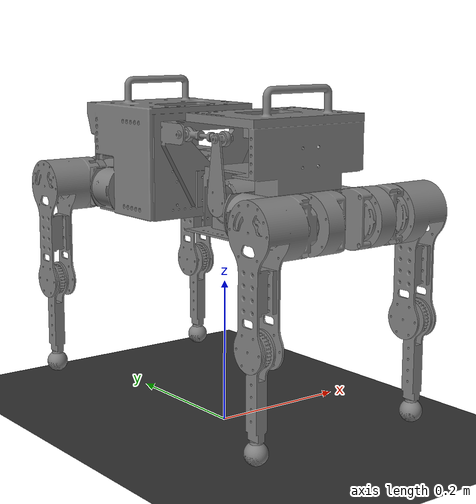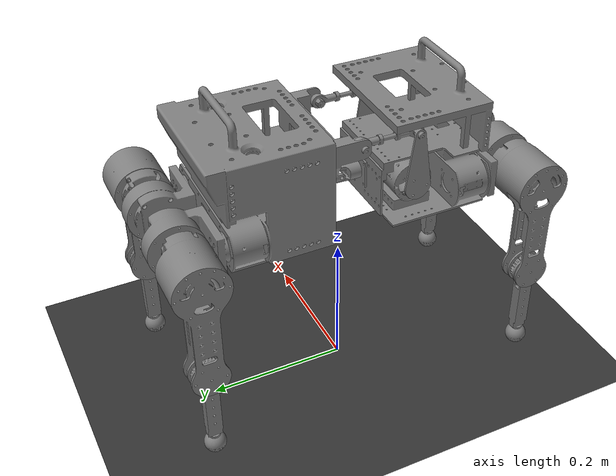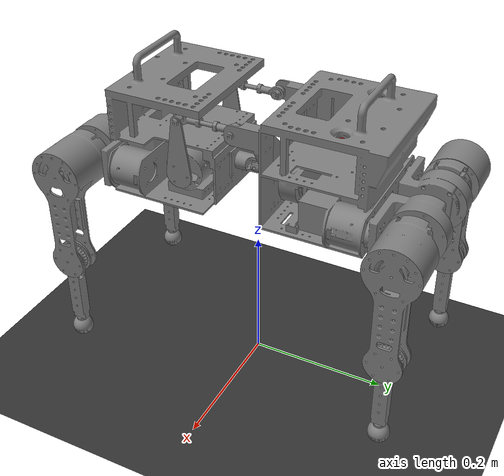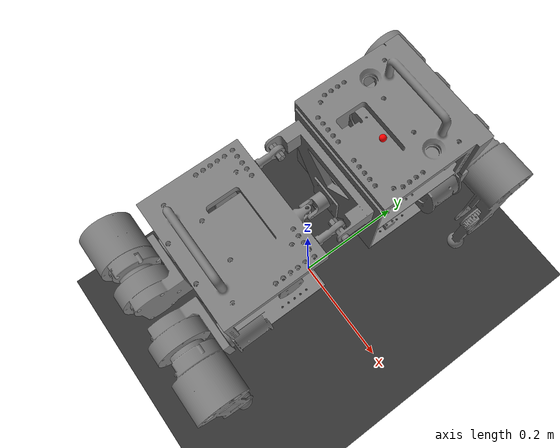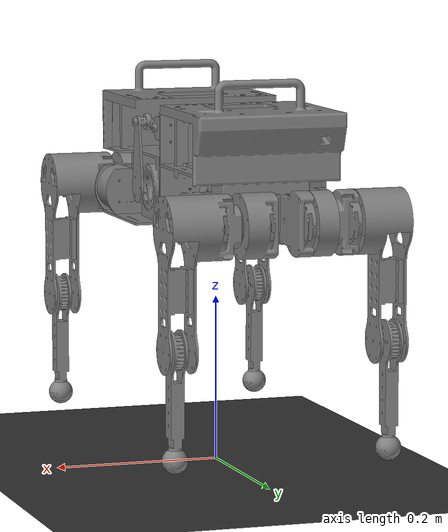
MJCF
<mujoco model="quadruped">
    <compiler angle="radian" eulerseq="XYZ" />
    <option gravity="0 0 0" timestep="0.001"/>
    <asset>
        <mesh name="SPINE_BASE" file="meshes/SPINE_BASE.stl" scale="0.001 0.001 0.001" />
        <mesh name="FR_tibia" file="meshes/FR_tibia.stl" scale="0.001 0.001 0.001" />
        <mesh name="FR_femur" file="meshes/FR_femur.stl" scale="0.001 0.001 0.001" />
        <mesh name="FR_hip" file="meshes/FR_hip.stl" scale="0.001 0.001 0.001" />
        <mesh name="FL_tibia" file="meshes/FL_tibia.stl" scale="0.001 0.001 0.001" />
        <mesh name="FL_femur" file="meshes/FL_femur.stl" scale="0.001 0.001 0.001" />
        <mesh name="FL_hip" file="meshes/FL_hip.stl" scale="0.001 0.001 0.001" />
        <mesh name="RR_tibia" file="meshes/RR_tibia.stl" scale="0.001 0.001 0.001" />
        <mesh name="RR_femur" file="meshes/RR_femur.stl" scale="0.001 0.001 0.001" />
        <mesh name="RR_hip" file="meshes/RR_hip.stl" scale="0.001 0.001 0.001" />
        <mesh name="RL_tibia" file="meshes/RL_tibia.stl" scale="0.001 0.001 0.001" />
        <mesh name="RL_femur" file="meshes/RL_femur.stl" scale="0.001 0.001 0.001" />
        <mesh name="RL_hip" file="meshes/RL_hip.stl" scale="0.001 0.001 0.001" />
        <mesh name="frontbase" file="meshes/frontbase.stl" scale="0.001 0.001 0.001" />
        <mesh name="backbase" file="meshes/backbase.stl" scale="0.001 0.001 0.001" />
        <mesh name="spine_RR_link" file="meshes/spine_RR_link.stl" scale="0.001 0.001 0.001" />
        <mesh name="spine_R_bar" file="meshes/spine_R_bar.stl" scale="0.001 0.001 0.001" />
        <mesh name="spine_RL_link" file="meshes/spine_RL_link.stl" scale="0.001 0.001 0.001" />
        <mesh name="spine_L_bar" file="meshes/spine_L_bar.stl" scale="0.001 0.001 0.001" />
        <mesh name="spine_FR_link" file="meshes/spine_FR_link.stl" scale="0.001 0.001 0.001" />
        <mesh name="spine_FL_link" file="meshes/spine_FL_link.stl" scale="0.001 0.001 0.001" />
    </asset>
      <worldbody>
        <light directional="true" pos="-0.5 0.5 3" dir="0 0 -1" />
        <body name="ground" pos="0 0 0">
            <geom type="plane" size="1 5 0.1" rgba="0.2 0.2 0.2 1" contype="1" conaffinity="1"/>
        </body>
        <body name="frontbase" pos="0.0 0.0 0.05" euler="0.0 0.0 0.0">
        <site name="imu_site" pos="0 0.12 0.35" size="0.005" rgba="1 0 0 1" />
            <joint name="root" type="free" />
            <geom name="frontbase_geom" type="mesh" mesh="frontbase" pos="0 0 0" euler="0 0 0" />
            <inertial mass="2.7047567302273086" pos="0.00033440222387868623 0.1245660632194667 0.2884083159461461" fullinertia="0.01078220929242324 0.013457553343312278 0.013262848443079664 1.1086881562630236e-05 2.426939650604682e-05 -0.0005029335341283497" />
            <body name="SPINE_BASE" pos="0.0 0.0 0.0" euler="0.0 -0.0 0.0">
                <joint name="F_j_spine" type="hinge" axis="0.0 -1.0 0.0" pos="0.0 0.048 0.2765" damping="0.0"/>
                <geom name="SPINE_BASE_geom" type="mesh" mesh="SPINE_BASE" pos="0 0 0" euler="0 0 0" />
                <inertial mass="0.31335795014290313" pos="3.392857252372269e-05 0.02698902626004699 0.30937648052390193" fullinertia="0.0004972224121499481 0.00096065696826848 0.0005518668776431874 -1.7053173613796147e-07 5.967022642829059e-08 1.8881962424268858e-05" />
                <body name="backbase" pos="0.0 0.0 0.0" euler="0.0 -0.0 0.0">
                    <joint name="j_universal" type="ball" pos="0.0 0.0 0.2765" damping="0.0"/>
                    <geom name="backbase_geom" type="mesh" mesh="backbase" pos="0 0 0" euler="0 0 0" />
                    <inertial mass="2.3349797051174357" pos="0.00013038137961569882 -0.10877171233725845 0.289194925915773" fullinertia="0.009087224494453011 0.011894123164930326 0.012186912807923042 2.1845326624663316e-06 4.249097312183789e-06 -6.126653941354587e-06" />
                    <body name="spine_L_bar" pos="0.0 0.0 0.0" euler="0.0 -0.0 0.0">
                        <joint name="RL_j_spine" type="hinge" axis="-1.0 0.0 0.0" pos="-0.061 -0.0805 0.2765" damping="0.0"/>
                        <geom name="spine_L_bar_geom" type="mesh" mesh="spine_L_bar" pos="0 0 0" euler="0 0 0" />
                        <inertial mass="0.03164580194616816" pos="-0.06755810312118324 -0.08039586581758262 0.33670530069433136" fullinertia="3.095324773523707e-05 3.1815550520951016e-05 2.89296070835705e-06 -2.062111216410479e-08 -3.7219913899651713e-06 -6.522642423108325e-08" />
                        <body name="spine_RL_link" pos="0.0 0.0 0.0" euler="0.0 -0.0 0.0">
                            <joint name="RL_j_link" type="ball" pos="-0.0615 -0.0805 0.3565" damping="0.0"/>
                            <geom name="spine_RL_link_geom" type="mesh" mesh="spine_RL_link" pos="0 0 0" euler="0 0 0" />
                            <inertial mass="0.02899974002495084" pos="-0.06149999999987106 -0.06295174717543707 0.35649999999854837" fullinertia="8.563419834303233e-06 6.156065880365616e-07 8.243247599980783e-06 1.1424780392566003e-17 6.353424730765056e-17 -9.497611030973019e-17" />
                        </body>
                    </body>
                    <body name="spine_R_bar" pos="0.0 0.0 0.0" euler="0.0 -0.0 0.0">
                        <joint name="RR_j_spine" type="hinge" axis="1.0 0.0 0.0" pos="0.061 -0.0805 0.2765" damping="0.0"/>
                        <geom name="spine_R_bar_geom" type="mesh" mesh="spine_R_bar" pos="0 0 0" euler="0 0 0" />
                        <inertial mass="0.031645801946168124" pos="0.06759945826011354 -0.08050000000314 0.3367056283650498" fullinertia="3.095234208204314e-05 3.181968096638418e-05 2.8953645025755212e-06 -1.279900664619138e-16 3.6961510613363726e-06 1.543253372315867e-15" />
                        <body name="spine_RR_link" pos="0.0 0.0 0.0" euler="0.0 -0.0 0.0">
                            <joint name="RR_j_link" type="ball" pos="0.0615 -0.0805 0.3565" damping="0.0"/>
                            <geom name="spine_RR_link_geom" type="mesh" mesh="spine_RR_link" pos="0 0 0" euler="0 0 0" />
                            <inertial mass="0.028999740024949126" pos="0.061499999999797876 -0.06295174717325776 0.3565000000126479" fullinertia="8.563419834318412e-06 6.156065880513067e-07 8.243247599981678e-06 3.5778671692021646e-17 6.10405823109339e-17 1.7141236346995825e-16" />
                        </body>
                    </body>
                    <body name="RR_hip" pos="0.0 0.0 0.0" euler="0.0 -0.0 0.0">
                        <joint name="RR_j_hip" type="hinge" axis="0.0 -1.0 0.0" pos="0.07 -0.176 0.266" damping="0.0" />
                        <geom name="RR_hip_geom" type="mesh" mesh="RR_hip" pos="0 0 0" euler="0 0 0" />
                        <inertial mass="0.42765614096569765" pos="0.04127800942400755 -0.2273092587519674 0.26606812124931534" fullinertia="0.0003819813177835876 0.00022425957082698733 0.0003062069227042566 -2.5639633945336374e-05 5.604986032681919e-07 2.0864847461235514e-07" />
                        <body name="RR_femur" pos="0.0 0.0 0.0" euler="0.0 -0.0 0.0">
                            <joint name="RR_j_femur" type="hinge" axis="1.0 0.0 0.0" pos="0.056 -0.234 0.266" damping="0.0"/>
                            <geom name="RR_femur_geom" type="mesh" mesh="RR_femur" pos="0 0 0" euler="0 0 0" />
                            <inertial mass="0.5478239660925199" pos="0.10262713634913981 -0.23333676163791178 0.2564743290521438" fullinertia="0.0009210868412945078 0.0009515235171001224 0.0003898366261748873 1.0369006426390326e-05 0.00012862808425460025 -3.44730242726049e-06" />
                            <body name="RR_tibia" pos="0.0 0.0 0.0" euler="0.0 -0.0 0.0">
                                <joint name="RR_j_tibia" type="hinge" axis="1.0 0.0 0.0" pos="0.113 -0.234 0.126" damping="0.0"/>
                                <geom name="RR_tibia_geom" type="mesh" mesh="RR_tibia" pos="0 0 0" euler="0 0 0" />
                                <inertial mass="0.06643041309117047" pos="0.1300000003100186 -0.23399974067058146 0.07451621272270392" fullinertia="0.0001728263651286045 0.00016950454321351953 7.324185496569019e-06 1.44164288016016e-09 8.782037597132586e-17 1.432228884318612e-09" />
                            </body>
                        </body>
                    </body>
                    <body name="RL_hip" pos="0.0 0.0 0.0" euler="0.0 -0.0 0.0">
                        <joint name="RL_j_hip" type="hinge" axis="0.0 -1.0 0.0" pos="-0.07 -0.176 0.266" damping="0.0" />
                        <geom name="RL_hip_geom" type="mesh" mesh="RL_hip" pos="0 0 0" euler="0 0 0" />
                        <inertial mass="0.42765614096569793" pos="-0.041278008804007546 -0.22730925875196725 0.26593187827114756" fullinertia="0.00038198131778947875 0.0002242595708328715 0.00030620692270427394 2.563963394533117e-05 5.60496829816147e-07 -2.0865824064408844e-07" />
                        <body name="RL_femur" pos="0.0 0.0 0.0" euler="0.0 -0.0 0.0">
                            <joint name="RL_j_femur" type="hinge" axis="-1.0 -0.0 -0.0" pos="-0.056 -0.234 0.266" damping="0.0"/>
                            <geom name="RL_femur_geom" type="mesh" mesh="RL_femur" pos="0 0 0" euler="0 0 0" />
                            <inertial mass="0.5478239660925199" pos="-0.10262713572913987 -0.23333676163791509 0.25636797041582277" fullinertia="0.0009199706233370408 0.0009504072991454657 0.00038983662617207704 -1.0369006426445837e-05 -0.00012716627840188635 -3.5134260216729274e-06" />
                            <body name="RL_tibia" pos="0.0 0.0 0.0" euler="0.0 -0.0 0.0">
                                <joint name="RL_j_tibia" type="hinge" axis="-1.0 0.0 0.0" pos="-0.113 -0.234 0.126" damping="0.0"/>
                                <geom name="RL_tibia_geom" type="mesh" mesh="RL_tibia" pos="0 0 0" euler="0 0 0" />
                                <inertial mass="0.06643041309117051" pos="-0.1299999996900186 -0.23400025932378982 0.07451621072657212" fullinertia="0.0001728263651286444 0.0001695045432135191 7.32418549660805e-06 1.4416428792927982e-09 -8.738669510233166e-17 -1.4322288387821208e-09" />
                            </body>
                        </body>
                    </body>
                </body>
                <body name="spine_FR_link" pos="0.0 0.0 0.0" euler="0.0 -0.0 0.0">
                    <joint name="FR_j_link" type="ball" pos="0.0615 -0.0005 0.3565" damping="0.0"/>
                    <joint name="FR_j_link_slide" type="slide" axis="0 1 0" pos="0.0615 -0.0045 0.3565" damping="1e3" stiffness="1e7" springref="0"/>
                    <geom name="spine_FR_link_geom" type="mesh" mesh="spine_FR_link" pos="0 0 0" euler="0 0 0" />
                    <inertial mass="0.022341134395664226" pos="0.06150000000021454 -0.011356679906857457 0.3565000000116856" fullinertia="3.6921940064428733e-06 5.856428636689774e-07 3.372021770187196e-06 3.628011519679619e-17 3.74049749507499e-17 3.7052609244692114e-17" />
                </body>
                <body name="spine_FL_link" pos="0.0 0.0 0.0" euler="0.0 -0.0 0.0">
                    <joint name="FL_j_link" type="ball" pos="-0.0615 -0.0005 0.3565" damping="0.0"/>
                    <joint name="FL_j_link_slide" type="slide" axis="0 1 0" pos="-0.0615 -0.0045 0.3565" damping="1e3" stiffness="1e7" springref="0"/>
                    <geom name="spine_FL_link_geom" type="mesh" mesh="spine_FL_link" pos="0 0 0" euler="0 0 0" />
                    <inertial mass="0.02234113439566692" pos="-0.061500000000215736 -0.011356679909035676 0.35649999999899146" fullinertia="3.6921940064372355e-06 5.856428636624722e-07 3.3720217701870605e-06 -3.625978640606209e-17 3.8055496254241206e-17 -9.053088140253962e-18" />
                </body>
            </body>
            <body name="FL_hip" pos="0.0 0.0 0.0" euler="0.0 -0.0 0.0">
                <joint name="FL_j_hip" type="hinge" axis="0.0 1.0 0.0" pos="-0.07 0.18775 0.2665" damping="0.0"/>
                <geom name="FL_hip_geom" type="mesh" mesh="FL_hip" pos="0 0 0" euler="0 0 0" />
                <inertial mass="0.4276561259852311" pos="-0.04127800980681607 0.2390592581385746 0.26656812124525314" fullinertia="0.0003819813000275618 0.00022425955607973877 0.00030620690583911536 -2.5639628777544832e-05 -5.605021222137435e-07 -2.0865082585308503e-07" />
                <body name="FL_femur" pos="0.0 0.0 0.0" euler="0.0 -0.0 0.0">
                    <joint name="FL_j_femur" type="hinge" axis="-1.0 0.0 0.0" pos="-0.056 0.24575 0.2665" damping="0.0"/>
                    <geom name="FL_femur_geom" type="mesh" mesh="FL_femur" pos="0 0 0" euler="0 0 0" />
                    <inertial mass="0.54782396609252" pos="-0.10262713603913984 0.2450867616397348 0.25697432863221853" fullinertia="0.0009210868407927564 0.0009515235170791322 0.0003898366256941052 1.0369006323856025e-05 -0.00012862808425901165 3.4473026945397445e-06" />
                    <body name="FL_tibia" pos="0.0 0.0 0.0" euler="0.0 -0.0 0.0">
                        <joint name="FL_j_tibia" type="hinge" axis="-1.0 0.0 0.0" pos="-0.113 0.24575 0.1265" damping="0.0"/>
                        <geom name="FL_tibia_geom" type="mesh" mesh="FL_tibia" pos="0 0 0" euler="0 0 0" />
                        <inertial mass="0.06643041309117047" pos="-0.1300000000000186 0.24574974067057934 0.0750162123027041" fullinertia="0.00017282636512864612 0.00016950454321351975 7.324185496609785e-06 1.4416428805938408e-09 -8.738669510233166e-17 -1.4322288392158017e-09" />
                    </body>
                </body>
            </body>
            <body name="FR_hip" pos="0.0 0.0 0.0" euler="0.0 -0.0 0.0">
                <joint name="FR_j_hip" type="hinge" axis="0.0 1.0 0.0" pos="0.07 0.18775 0.2665" damping="0.0" />
                <geom name="FR_hip_geom" type="mesh" mesh="FR_hip" pos="0 0 0" euler="0 0 0" />
                <inertial mass="0.4276561259852311" pos="0.04127800980681604 0.2390592581385745 0.26643187943539876" fullinertia="0.00038198130003343905 0.00022425955608560214 0.00030620690583912924 2.5639628777546566e-05 -5.605003454266927e-07 2.0866111600723047e-07" />
                <body name="FR_femur" pos="0.0 0.0 0.0" euler="0.0 -0.0 0.0">
                    <joint name="FR_j_femur" type="hinge" axis="1.0 0.0 0.0" pos="0.056 0.24575 0.2665" damping="0.0"/>
                    <geom name="FR_femur_geom" type="mesh" mesh="FR_femur" pos="0 0 0" euler="0 0 0" />
                    <inertial mass="0.5478239660925192" pos="0.10262713603913984 0.2450867616397381 0.2568679719959032" fullinertia="0.0009199706228392168 0.0009504072991228102 0.0003898366256969016 -1.0369006323908067e-05 0.00012716627840619887 3.513426288875854e-06" />
                    <body name="FR_tibia" pos="0.0 0.0 0.0" euler="0.0 -0.0 0.0">
                        <joint name="FR_j_tibia" type="hinge" axis="1.0 0.0 0.0" pos="0.113 0.24575 0.1265" damping="0.0"/>
                        <geom name="FR_tibia_geom" type="mesh" mesh="FR_tibia" pos="0 0 0" euler="0 0 0" />
                        <inertial mass="0.06643041309117052" pos="0.13000000000001857 0.24575025932378775 0.07501621230657225" fullinertia="0.0001728263651286045 0.00016950454321351953 7.324185496567284e-06 1.441642879726479e-09 8.792879618857441e-17 1.4322288841017716e-09" />
                    </body>
                </body>
            </body>
        </body>
    </worldbody>

    <equality>
    <weld name="spine_L_link" body1="spine_FL_link" body2="spine_RL_link"/>
    <weld name="spine_R_link" body1="spine_FR_link" body2="spine_RR_link"/>
</equality>

    <actuator>
        <!-- Front Right leg -->
        <motor name="FR_hip_act" joint="FR_j_hip" gear="1" ctrllimited="true" ctrlrange="-20 20"/>
        <motor name="FR_femur_act" joint="FR_j_femur" gear="1" ctrllimited="true" ctrlrange="-12 12"/>
        <motor name="FR_tibia_act" joint="FR_j_tibia" gear="1" ctrllimited="true" ctrlrange="-12 12"/>

        <!-- Front Left leg -->
        <motor name="FL_hip_act" joint="FL_j_hip" gear="1" ctrllimited="true" ctrlrange="-20 20"/>
        <motor name="FL_femur_act" joint="FL_j_femur" gear="1" ctrllimited="true" ctrlrange="-12 12"/>
        <motor name="FL_tibia_act" joint="FL_j_tibia" gear="1" ctrllimited="true" ctrlrange="-12 12"/>

        <!-- Rear Right leg -->
        <motor name="RR_hip_act" joint="RR_j_hip" gear="1" ctrllimited="true" ctrlrange="-20 20"/>
        <motor name="RR_femur_act" joint="RR_j_femur" gear="1" ctrllimited="true" ctrlrange="-12 12"/>
        <motor name="RR_tibia_act" joint="RR_j_tibia" gear="1" ctrllimited="true" ctrlrange="-12 12"/>

        <!-- Rear Left leg -->
        <motor name="RL_hip_act" joint="RL_j_hip" gear="1" ctrllimited="true" ctrlrange="-20 20"/>
        <motor name="RL_femur_act" joint="RL_j_femur" gear="1" ctrllimited="true" ctrlrange="-12 12"/>
        <motor name="RL_tibia_act" joint="RL_j_tibia" gear="1" ctrllimited="true" ctrlrange="-12 12"/>

        <!-- Spine actuators -->
        <motor name="F_spine_act" joint="F_j_spine" gear="1" ctrllimited="true" ctrlrange="-20 20"/>
        <motor name="RR_spine_act" joint="RR_j_spine" gear="1" ctrllimited="true" ctrlrange="-20 20"/>
        <motor name="RL_spine_act" joint="RL_j_spine" gear="1" ctrllimited="true" ctrlrange="-20 20"/>
    </actuator>

    <sensor>
        <accelerometer site="imu_site" />

        <!-- Front Right leg -->
        <actuatorfrc name="FR_hip_s_tau" actuator="FR_hip_act"/>
        <actuatorpos name="FR_hip_s_pos" actuator="FR_hip_act"/>
        <actuatorvel name="FR_hip_s_vel" actuator="FR_hip_act"/>
        <actuatorfrc name="FR_femur_s_tau" actuator="FR_femur_act"/>
        <actuatorpos name="FR_femur_s_pos" actuator="FR_femur_act"/>
        <actuatorvel name="FR_femur_s_vel" actuator="FR_femur_act"/>
        <actuatorfrc name="FR_tibia_s_tau" actuator="FR_tibia_act"/>
        <actuatorpos name="FR_tibia_s_pos" actuator="FR_tibia_act"/>
        <actuatorvel name="FR_tibia_s_vel" actuator="FR_tibia_act"/>

        <!-- Front Left leg -->
        <actuatorfrc name="FL_hip_s_tau" actuator="FL_hip_act"/>
        <actuatorpos name="FL_hip_s_pos" actuator="FL_hip_act"/>
        <actuatorvel name="FL_hip_s_vel" actuator="FL_hip_act"/>
        <actuatorfrc name="FL_femur_s_tau" actuator="FL_femur_act"/>
        <actuatorpos name="FL_femur_s_pos" actuator="FL_femur_act"/>
        <actuatorvel name="FL_femur_s_vel" actuator="FL_femur_act"/>
        <actuatorfrc name="FL_tibia_s_tau" actuator="FL_tibia_act"/>
        <actuatorpos name="FL_tibia_s_pos" actuator="FL_tibia_act"/>
        <actuatorvel name="FL_tibia_s_vel" actuator="FL_tibia_act"/>

        <!-- Rear Right leg -->
        <actuatorfrc name="RR_hip_s_tau" actuator="RR_hip_act"/>
        <actuatorpos name="RR_hip_s_pos" actuator="RR_hip_act"/>
        <actuatorvel name="RR_hip_s_vel" actuator="RR_hip_act"/>
        <actuatorfrc name="RR_femur_s_tau" actuator="RR_femur_act"/>
        <actuatorpos name="RR_femur_s_pos" actuator="RR_femur_act"/>
        <actuatorvel name="RR_femur_s_vel" actuator="RR_femur_act"/>
        <actuatorfrc name="RR_tibia_s_tau" actuator="RR_tibia_act"/>
        <actuatorpos name="RR_tibia_s_pos" actuator="RR_tibia_act"/>
        <actuatorvel name="RR_tibia_s_vel" actuator="RR_tibia_act"/>

        <!-- Rear Left leg -->
        <actuatorfrc name="RL_hip_s_tau" actuator="RL_hip_act"/>
        <actuatorpos name="RL_hip_s_pos" actuator="RL_hip_act"/>
        <actuatorvel name="RL_hip_s_vel" actuator="RL_hip_act"/>
        <actuatorfrc name="RL_femur_s_tau" actuator="RL_femur_act"/>
        <actuatorpos name="RL_femur_s_pos" actuator="RL_femur_act"/>
        <actuatorvel name="RL_femur_s_vel" actuator="RL_femur_act"/>
        <actuatorfrc name="RL_tibia_s_tau" actuator="RL_tibia_act"/>
        <actuatorpos name="RL_tibia_s_pos" actuator="RL_tibia_act"/>
        <actuatorvel name="RL_tibia_s_vel" actuator="RL_tibia_act"/>

        <!-- Spine -->
        <actuatorfrc name="F_spine_s_tau" actuator="F_spine_act"/>
        <actuatorpos name="F_spine_s_pos" actuator="F_spine_act"/>
        <actuatorvel name="F_spine_s_vel" actuator="F_spine_act"/>
        <actuatorfrc name="RL_spine_s_tau" actuator="RL_spine_act"/>
        <actuatorpos name="RL_spine_s_pos" actuator="RL_spine_act"/>
        <actuatorvel name="RL_spine_s_vel" actuator="RL_spine_act"/>
        <actuatorfrc name="RR_spine_s_tau" actuator="RR_spine_act"/>
        <actuatorpos name="RR_spine_s_pos" actuator="RR_spine_act"/>
        <actuatorvel name="RR_spine_s_vel" actuator="RR_spine_act"/>

    </sensor>

</mujoco>
